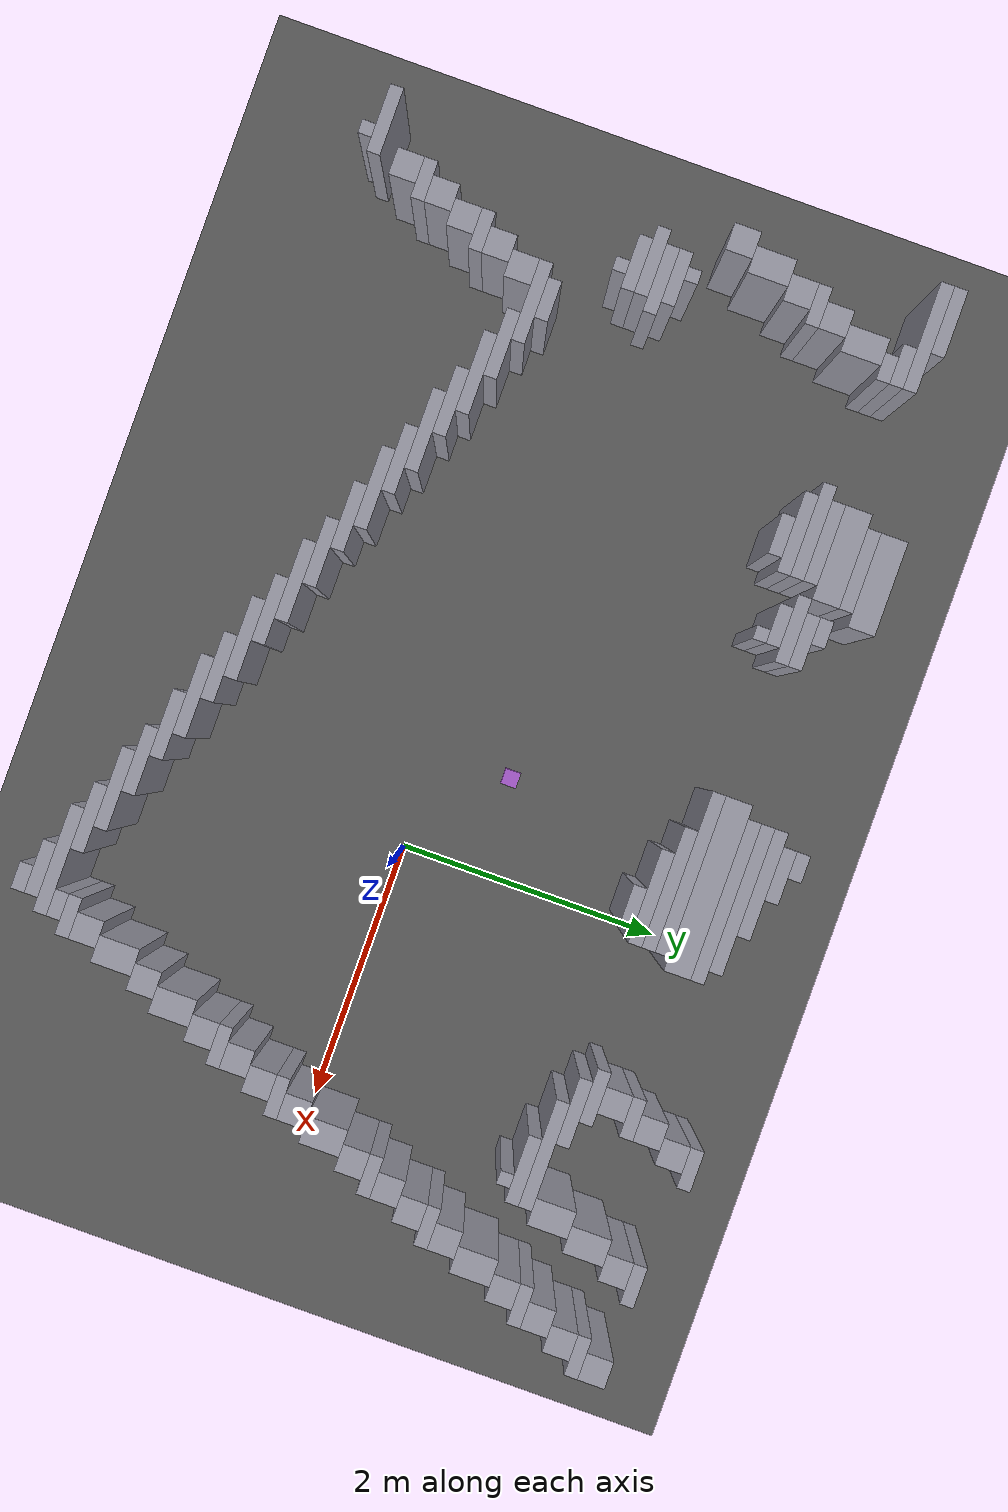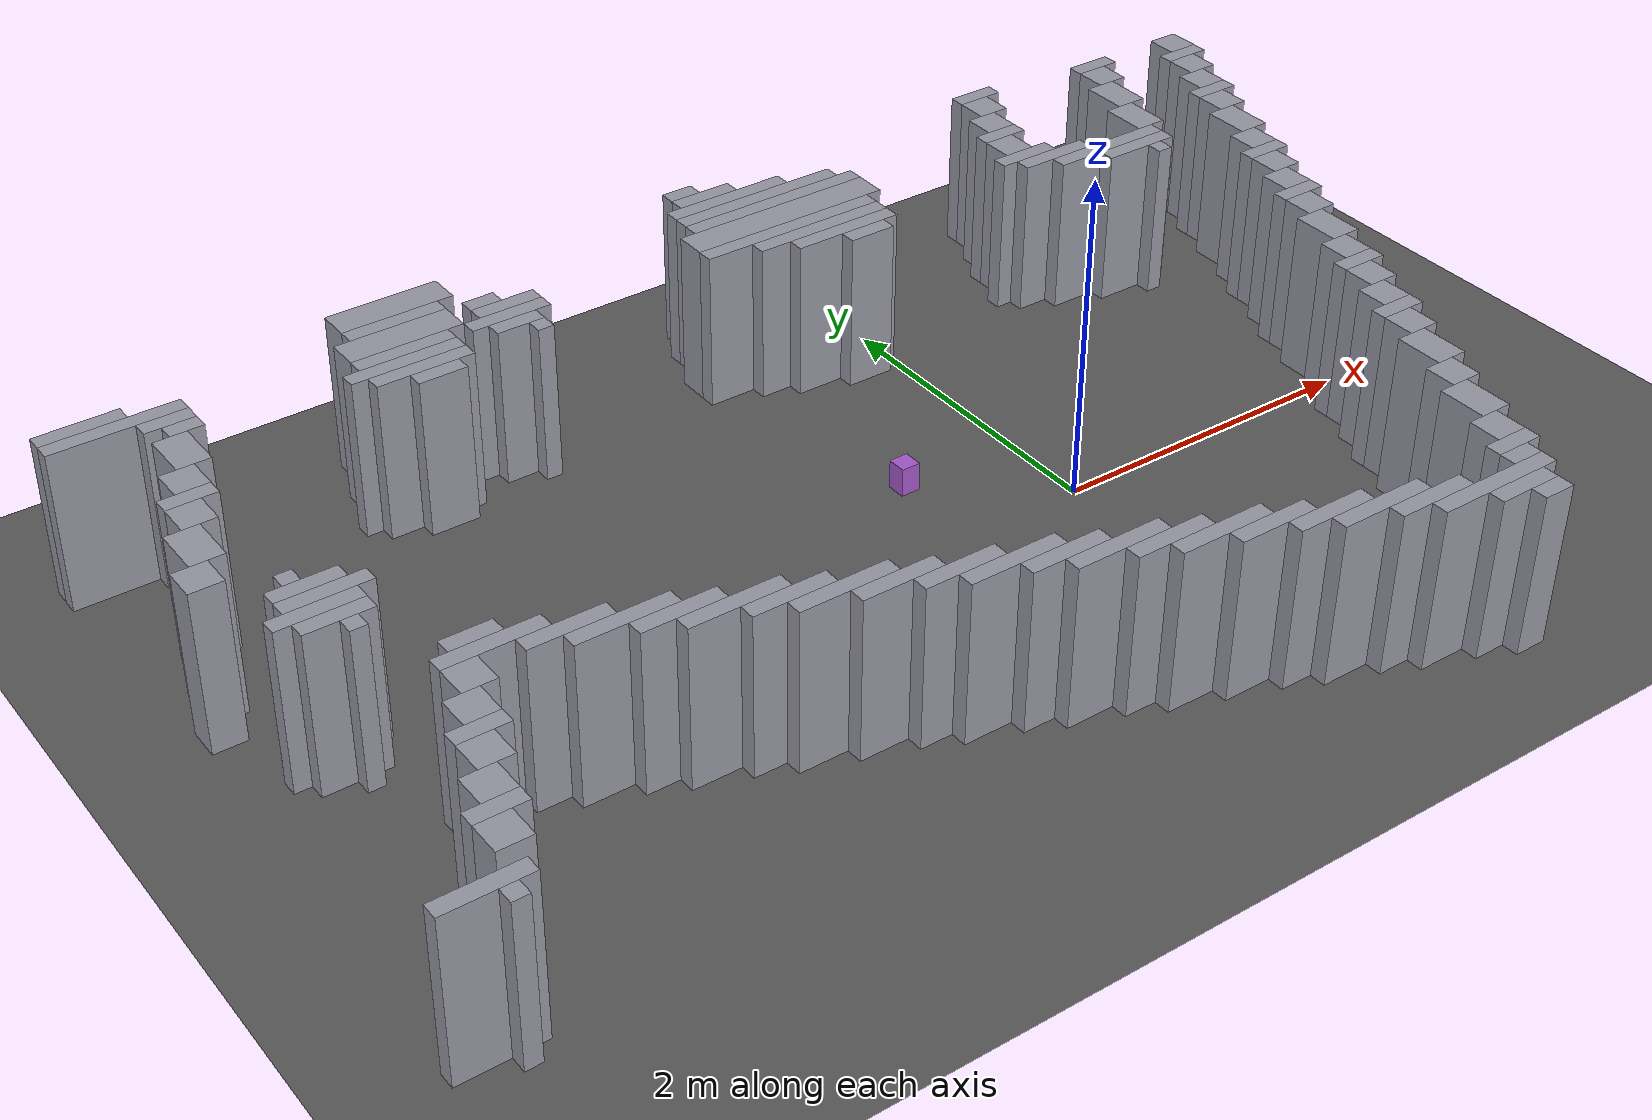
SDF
<sdf version="1.8">
 <world name="dimi">
  <model name="ground">
   <static>true</static>
   <link name="ground_link">
    <collision name="c"><geometry><plane><normal>0 0 1</normal><size>60 60</size></plane></geometry></collision>
    <visual name="v">
     <geometry><plane><normal>0 0 1</normal><size>60 60</size></plane></geometry>
     <material><ambient>0.3 0.3 0.3 1</ambient><diffuse>0.35 0.35 0.35 1</diffuse></material>
    </visual>
   </link>
  </model>
  <model name="walls">
   <static>true</static>
   <link name="wall_163">
    <pose>-0.8730 2.6800 0.5000 0 0 0</pose>
    <collision name="c"><geometry><box><size>0.2000 0.1000 1.0000</size></box></geometry></collision>
    <visual name="v">
     <geometry><box><size>0.2000 0.1000 1.0000</size></box></geometry>
     <material><ambient>0.5 0.5 0.55 1</ambient><diffuse>0.6 0.6 0.65 1</diffuse></material>
    </visual>
   </link>
   <link name="wall_164">
    <pose>1.3770 2.6800 0.5000 0 0 0</pose>
    <collision name="c"><geometry><box><size>0.3000 0.1000 1.0000</size></box></geometry></collision>
    <visual name="v">
     <geometry><box><size>0.3000 0.1000 1.0000</size></box></geometry>
     <material><ambient>0.5 0.5 0.55 1</ambient><diffuse>0.6 0.6 0.65 1</diffuse></material>
    </visual>
   </link>
   <link name="wall_166">
    <pose>-2.9230 2.5300 0.5000 0 0 0</pose>
    <collision name="c"><geometry><box><size>0.7000 0.2000 1.0000</size></box></geometry></collision>
    <visual name="v">
     <geometry><box><size>0.7000 0.2000 1.0000</size></box></geometry>
     <material><ambient>0.5 0.5 0.55 1</ambient><diffuse>0.6 0.6 0.65 1</diffuse></material>
    </visual>
   </link>
   <link name="wall_167">
    <pose>-0.7730 2.5800 0.5000 0 0 0</pose>
    <collision name="c"><geometry><box><size>0.4000 0.1000 1.0000</size></box></geometry></collision>
    <visual name="v">
     <geometry><box><size>0.4000 0.1000 1.0000</size></box></geometry>
     <material><ambient>0.5 0.5 0.55 1</ambient><diffuse>0.6 0.6 0.65 1</diffuse></material>
    </visual>
   </link>
   <link name="wall_168">
    <pose>1.3270 2.5300 0.5000 0 0 0</pose>
    <collision name="c"><geometry><box><size>0.2000 0.2000 1.0000</size></box></geometry></collision>
    <visual name="v">
     <geometry><box><size>0.2000 0.2000 1.0000</size></box></geometry>
     <material><ambient>0.5 0.5 0.55 1</ambient><diffuse>0.6 0.6 0.65 1</diffuse></material>
    </visual>
   </link>
   <link name="wall_169">
    <pose>2.2770 2.5800 0.5000 0 0 0</pose>
    <collision name="c"><geometry><box><size>0.3000 0.1000 1.0000</size></box></geometry></collision>
    <visual name="v">
     <geometry><box><size>0.3000 0.1000 1.0000</size></box></geometry>
     <material><ambient>0.5 0.5 0.55 1</ambient><diffuse>0.6 0.6 0.65 1</diffuse></material>
    </visual>
   </link>
   <link name="wall_170">
    <pose>2.9270 2.5300 0.5000 0 0 0</pose>
    <collision name="c"><geometry><box><size>0.2000 0.2000 1.0000</size></box></geometry></collision>
    <visual name="v">
     <geometry><box><size>0.2000 0.2000 1.0000</size></box></geometry>
     <material><ambient>0.5 0.5 0.55 1</ambient><diffuse>0.6 0.6 0.65 1</diffuse></material>
    </visual>
   </link>
   <link name="wall_173">
    <pose>-0.6730 2.4800 0.5000 0 0 0</pose>
    <collision name="c"><geometry><box><size>0.8000 0.1000 1.0000</size></box></geometry></collision>
    <visual name="v">
     <geometry><box><size>0.8000 0.1000 1.0000</size></box></geometry>
     <material><ambient>0.5 0.5 0.55 1</ambient><diffuse>0.6 0.6 0.65 1</diffuse></material>
    </visual>
   </link>
   <link name="wall_174">
    <pose>2.2270 2.4300 0.5000 0 0 0</pose>
    <collision name="c"><geometry><box><size>0.2000 0.2000 1.0000</size></box></geometry></collision>
    <visual name="v">
     <geometry><box><size>0.2000 0.2000 1.0000</size></box></geometry>
     <material><ambient>0.5 0.5 0.55 1</ambient><diffuse>0.6 0.6 0.65 1</diffuse></material>
    </visual>
   </link>
   <link name="wall_176">
    <pose>-4.8230 2.3800 0.5000 0 0 0</pose>
    <collision name="c"><geometry><box><size>0.5000 0.1000 1.0000</size></box></geometry></collision>
    <visual name="v">
     <geometry><box><size>0.5000 0.1000 1.0000</size></box></geometry>
     <material><ambient>0.5 0.5 0.55 1</ambient><diffuse>0.6 0.6 0.65 1</diffuse></material>
    </visual>
   </link>
   <link name="wall_177">
    <pose>-2.9730 2.3800 0.5000 0 0 0</pose>
    <collision name="c"><geometry><box><size>0.6000 0.1000 1.0000</size></box></geometry></collision>
    <visual name="v">
     <geometry><box><size>0.6000 0.1000 1.0000</size></box></geometry>
     <material><ambient>0.5 0.5 0.55 1</ambient><diffuse>0.6 0.6 0.65 1</diffuse></material>
    </visual>
   </link>
   <link name="wall_178">
    <pose>-0.5230 2.3800 0.5000 0 0 0</pose>
    <collision name="c"><geometry><box><size>1.1000 0.1000 1.0000</size></box></geometry></collision>
    <visual name="v">
     <geometry><box><size>1.1000 0.1000 1.0000</size></box></geometry>
     <material><ambient>0.5 0.5 0.55 1</ambient><diffuse>0.6 0.6 0.65 1</diffuse></material>
    </visual>
   </link>
   <link name="wall_179">
    <pose>1.2270 2.3300 0.5000 0 0 0</pose>
    <collision name="c"><geometry><box><size>0.2000 0.2000 1.0000</size></box></geometry></collision>
    <visual name="v">
     <geometry><box><size>0.2000 0.2000 1.0000</size></box></geometry>
     <material><ambient>0.5 0.5 0.55 1</ambient><diffuse>0.6 0.6 0.65 1</diffuse></material>
    </visual>
   </link>
   <link name="wall_180">
    <pose>2.8770 2.3800 0.5000 0 0 0</pose>
    <collision name="c"><geometry><box><size>0.3000 0.1000 1.0000</size></box></geometry></collision>
    <visual name="v">
     <geometry><box><size>0.3000 0.1000 1.0000</size></box></geometry>
     <material><ambient>0.5 0.5 0.55 1</ambient><diffuse>0.6 0.6 0.65 1</diffuse></material>
    </visual>
   </link>
   <link name="wall_182">
    <pose>-4.6730 2.2800 0.5000 0 0 0</pose>
    <collision name="c"><geometry><box><size>0.8000 0.1000 1.0000</size></box></geometry></collision>
    <visual name="v">
     <geometry><box><size>0.8000 0.1000 1.0000</size></box></geometry>
     <material><ambient>0.5 0.5 0.55 1</ambient><diffuse>0.6 0.6 0.65 1</diffuse></material>
    </visual>
   </link>
   <link name="wall_183">
    <pose>-3.0230 2.2300 0.5000 0 0 0</pose>
    <collision name="c"><geometry><box><size>0.7000 0.2000 1.0000</size></box></geometry></collision>
    <visual name="v">
     <geometry><box><size>0.7000 0.2000 1.0000</size></box></geometry>
     <material><ambient>0.5 0.5 0.55 1</ambient><diffuse>0.6 0.6 0.65 1</diffuse></material>
    </visual>
   </link>
   <link name="wall_184">
    <pose>-2.4730 2.2800 0.5000 0 0 0</pose>
    <collision name="c"><geometry><box><size>0.2000 0.1000 1.0000</size></box></geometry></collision>
    <visual name="v">
     <geometry><box><size>0.2000 0.1000 1.0000</size></box></geometry>
     <material><ambient>0.5 0.5 0.55 1</ambient><diffuse>0.6 0.6 0.65 1</diffuse></material>
    </visual>
   </link>
   <link name="wall_185">
    <pose>-0.4730 2.2800 0.5000 0 0 0</pose>
    <collision name="c"><geometry><box><size>1.2000 0.1000 1.0000</size></box></geometry></collision>
    <visual name="v">
     <geometry><box><size>1.2000 0.1000 1.0000</size></box></geometry>
     <material><ambient>0.5 0.5 0.55 1</ambient><diffuse>0.6 0.6 0.65 1</diffuse></material>
    </visual>
   </link>
   <link name="wall_186">
    <pose>2.1270 2.1800 0.5000 0 0 0</pose>
    <collision name="c"><geometry><box><size>0.2000 0.3000 1.0000</size></box></geometry></collision>
    <visual name="v">
     <geometry><box><size>0.2000 0.3000 1.0000</size></box></geometry>
     <material><ambient>0.5 0.5 0.55 1</ambient><diffuse>0.6 0.6 0.65 1</diffuse></material>
    </visual>
   </link>
   <link name="wall_187">
    <pose>2.8270 2.2300 0.5000 0 0 0</pose>
    <collision name="c"><geometry><box><size>0.2000 0.2000 1.0000</size></box></geometry></collision>
    <visual name="v">
     <geometry><box><size>0.2000 0.2000 1.0000</size></box></geometry>
     <material><ambient>0.5 0.5 0.55 1</ambient><diffuse>0.6 0.6 0.65 1</diffuse></material>
    </visual>
   </link>
   <link name="wall_190">
    <pose>-4.4230 2.1800 0.5000 0 0 0</pose>
    <collision name="c"><geometry><box><size>0.3000 0.1000 1.0000</size></box></geometry></collision>
    <visual name="v">
     <geometry><box><size>0.3000 0.1000 1.0000</size></box></geometry>
     <material><ambient>0.5 0.5 0.55 1</ambient><diffuse>0.6 0.6 0.65 1</diffuse></material>
    </visual>
   </link>
   <link name="wall_191">
    <pose>-2.3730 2.1800 0.5000 0 0 0</pose>
    <collision name="c"><geometry><box><size>0.4000 0.1000 1.0000</size></box></geometry></collision>
    <visual name="v">
     <geometry><box><size>0.4000 0.1000 1.0000</size></box></geometry>
     <material><ambient>0.5 0.5 0.55 1</ambient><diffuse>0.6 0.6 0.65 1</diffuse></material>
    </visual>
   </link>
   <link name="wall_192">
    <pose>-0.5230 2.1300 0.5000 0 0 0</pose>
    <collision name="c"><geometry><box><size>1.3000 0.2000 1.0000</size></box></geometry></collision>
    <visual name="v">
     <geometry><box><size>1.3000 0.2000 1.0000</size></box></geometry>
     <material><ambient>0.5 0.5 0.55 1</ambient><diffuse>0.6 0.6 0.65 1</diffuse></material>
    </visual>
   </link>
   <link name="wall_193">
    <pose>1.1770 2.1800 0.5000 0 0 0</pose>
    <collision name="c"><geometry><box><size>0.3000 0.1000 1.0000</size></box></geometry></collision>
    <visual name="v">
     <geometry><box><size>0.3000 0.1000 1.0000</size></box></geometry>
     <material><ambient>0.5 0.5 0.55 1</ambient><diffuse>0.6 0.6 0.65 1</diffuse></material>
    </visual>
   </link>
   <link name="wall_196">
    <pose>-4.3730 2.0800 0.5000 0 0 0</pose>
    <collision name="c"><geometry><box><size>0.2000 0.1000 1.0000</size></box></geometry></collision>
    <visual name="v">
     <geometry><box><size>0.2000 0.1000 1.0000</size></box></geometry>
     <material><ambient>0.5 0.5 0.55 1</ambient><diffuse>0.6 0.6 0.65 1</diffuse></material>
    </visual>
   </link>
   <link name="wall_197">
    <pose>-3.0730 2.0800 0.5000 0 0 0</pose>
    <collision name="c"><geometry><box><size>0.6000 0.1000 1.0000</size></box></geometry></collision>
    <visual name="v">
     <geometry><box><size>0.6000 0.1000 1.0000</size></box></geometry>
     <material><ambient>0.5 0.5 0.55 1</ambient><diffuse>0.6 0.6 0.65 1</diffuse></material>
    </visual>
   </link>
   <link name="wall_198">
    <pose>-2.4230 2.0800 0.5000 0 0 0</pose>
    <collision name="c"><geometry><box><size>0.5000 0.1000 1.0000</size></box></geometry></collision>
    <visual name="v">
     <geometry><box><size>0.5000 0.1000 1.0000</size></box></geometry>
     <material><ambient>0.5 0.5 0.55 1</ambient><diffuse>0.6 0.6 0.65 1</diffuse></material>
    </visual>
   </link>
   <link name="wall_199">
    <pose>1.1270 2.0300 0.5000 0 0 0</pose>
    <collision name="c"><geometry><box><size>0.2000 0.2000 1.0000</size></box></geometry></collision>
    <visual name="v">
     <geometry><box><size>0.2000 0.2000 1.0000</size></box></geometry>
     <material><ambient>0.5 0.5 0.55 1</ambient><diffuse>0.6 0.6 0.65 1</diffuse></material>
    </visual>
   </link>
   <link name="wall_200">
    <pose>2.7270 2.0300 0.5000 0 0 0</pose>
    <collision name="c"><geometry><box><size>0.2000 0.2000 1.0000</size></box></geometry></collision>
    <visual name="v">
     <geometry><box><size>0.2000 0.2000 1.0000</size></box></geometry>
     <material><ambient>0.5 0.5 0.55 1</ambient><diffuse>0.6 0.6 0.65 1</diffuse></material>
    </visual>
   </link>
   <link name="wall_203">
    <pose>-4.4730 1.8800 0.5000 0 0 0</pose>
    <collision name="c"><geometry><box><size>0.2000 0.3000 1.0000</size></box></geometry></collision>
    <visual name="v">
     <geometry><box><size>0.2000 0.3000 1.0000</size></box></geometry>
     <material><ambient>0.5 0.5 0.55 1</ambient><diffuse>0.6 0.6 0.65 1</diffuse></material>
    </visual>
   </link>
   <link name="wall_204">
    <pose>-3.1230 1.9800 0.5000 0 0 0</pose>
    <collision name="c"><geometry><box><size>0.7000 0.1000 1.0000</size></box></geometry></collision>
    <visual name="v">
     <geometry><box><size>0.7000 0.1000 1.0000</size></box></geometry>
     <material><ambient>0.5 0.5 0.55 1</ambient><diffuse>0.6 0.6 0.65 1</diffuse></material>
    </visual>
   </link>
   <link name="wall_205">
    <pose>-2.4230 1.9800 0.5000 0 0 0</pose>
    <collision name="c"><geometry><box><size>0.3000 0.1000 1.0000</size></box></geometry></collision>
    <visual name="v">
     <geometry><box><size>0.3000 0.1000 1.0000</size></box></geometry>
     <material><ambient>0.5 0.5 0.55 1</ambient><diffuse>0.6 0.6 0.65 1</diffuse></material>
    </visual>
   </link>
   <link name="wall_206">
    <pose>-0.5730 1.9800 0.5000 0 0 0</pose>
    <collision name="c"><geometry><box><size>1.2000 0.1000 1.0000</size></box></geometry></collision>
    <visual name="v">
     <geometry><box><size>1.2000 0.1000 1.0000</size></box></geometry>
     <material><ambient>0.5 0.5 0.55 1</ambient><diffuse>0.6 0.6 0.65 1</diffuse></material>
    </visual>
   </link>
   <link name="wall_207">
    <pose>2.0270 1.8800 0.5000 0 0 0</pose>
    <collision name="c"><geometry><box><size>0.2000 0.3000 1.0000</size></box></geometry></collision>
    <visual name="v">
     <geometry><box><size>0.2000 0.3000 1.0000</size></box></geometry>
     <material><ambient>0.5 0.5 0.55 1</ambient><diffuse>0.6 0.6 0.65 1</diffuse></material>
    </visual>
   </link>
   <link name="wall_209">
    <pose>-3.0730 1.8800 0.5000 0 0 0</pose>
    <collision name="c"><geometry><box><size>0.6000 0.1000 1.0000</size></box></geometry></collision>
    <visual name="v">
     <geometry><box><size>0.6000 0.1000 1.0000</size></box></geometry>
     <material><ambient>0.5 0.5 0.55 1</ambient><diffuse>0.6 0.6 0.65 1</diffuse></material>
    </visual>
   </link>
   <link name="wall_210">
    <pose>-2.3230 1.8800 0.5000 0 0 0</pose>
    <collision name="c"><geometry><box><size>0.1000 0.1000 1.0000</size></box></geometry></collision>
    <visual name="v">
     <geometry><box><size>0.1000 0.1000 1.0000</size></box></geometry>
     <material><ambient>0.5 0.5 0.55 1</ambient><diffuse>0.6 0.6 0.65 1</diffuse></material>
    </visual>
   </link>
   <link name="wall_211">
    <pose>-0.4230 1.8800 0.5000 0 0 0</pose>
    <collision name="c"><geometry><box><size>0.9000 0.1000 1.0000</size></box></geometry></collision>
    <visual name="v">
     <geometry><box><size>0.9000 0.1000 1.0000</size></box></geometry>
     <material><ambient>0.5 0.5 0.55 1</ambient><diffuse>0.6 0.6 0.65 1</diffuse></material>
    </visual>
   </link>
   <link name="wall_212">
    <pose>1.1270 1.8800 0.5000 0 0 0</pose>
    <collision name="c"><geometry><box><size>0.4000 0.1000 1.0000</size></box></geometry></collision>
    <visual name="v">
     <geometry><box><size>0.4000 0.1000 1.0000</size></box></geometry>
     <material><ambient>0.5 0.5 0.55 1</ambient><diffuse>0.6 0.6 0.65 1</diffuse></material>
    </visual>
   </link>
   <link name="wall_213">
    <pose>2.6770 1.8800 0.5000 0 0 0</pose>
    <collision name="c"><geometry><box><size>0.3000 0.1000 1.0000</size></box></geometry></collision>
    <visual name="v">
     <geometry><box><size>0.3000 0.1000 1.0000</size></box></geometry>
     <material><ambient>0.5 0.5 0.55 1</ambient><diffuse>0.6 0.6 0.65 1</diffuse></material>
    </visual>
   </link>
   <link name="wall_215">
    <pose>-3.0230 1.7800 0.5000 0 0 0</pose>
    <collision name="c"><geometry><box><size>0.3000 0.1000 1.0000</size></box></geometry></collision>
    <visual name="v">
     <geometry><box><size>0.3000 0.1000 1.0000</size></box></geometry>
     <material><ambient>0.5 0.5 0.55 1</ambient><diffuse>0.6 0.6 0.65 1</diffuse></material>
    </visual>
   </link>
   <link name="wall_216">
    <pose>-0.3230 1.7800 0.5000 0 0 0</pose>
    <collision name="c"><geometry><box><size>0.7000 0.1000 1.0000</size></box></geometry></collision>
    <visual name="v">
     <geometry><box><size>0.7000 0.1000 1.0000</size></box></geometry>
     <material><ambient>0.5 0.5 0.55 1</ambient><diffuse>0.6 0.6 0.65 1</diffuse></material>
    </visual>
   </link>
   <link name="wall_217">
    <pose>1.2770 1.7800 0.5000 0 0 0</pose>
    <collision name="c"><geometry><box><size>0.5000 0.1000 1.0000</size></box></geometry></collision>
    <visual name="v">
     <geometry><box><size>0.5000 0.1000 1.0000</size></box></geometry>
     <material><ambient>0.5 0.5 0.55 1</ambient><diffuse>0.6 0.6 0.65 1</diffuse></material>
    </visual>
   </link>
   <link name="wall_218">
    <pose>2.6270 1.7300 0.5000 0 0 0</pose>
    <collision name="c"><geometry><box><size>0.2000 0.2000 1.0000</size></box></geometry></collision>
    <visual name="v">
     <geometry><box><size>0.2000 0.2000 1.0000</size></box></geometry>
     <material><ambient>0.5 0.5 0.55 1</ambient><diffuse>0.6 0.6 0.65 1</diffuse></material>
    </visual>
   </link>
   <link name="wall_220">
    <pose>-4.5730 1.6300 0.5000 0 0 0</pose>
    <collision name="c"><geometry><box><size>0.2000 0.2000 1.0000</size></box></geometry></collision>
    <visual name="v">
     <geometry><box><size>0.2000 0.2000 1.0000</size></box></geometry>
     <material><ambient>0.5 0.5 0.55 1</ambient><diffuse>0.6 0.6 0.65 1</diffuse></material>
    </visual>
   </link>
   <link name="wall_221">
    <pose>-0.2230 1.6800 0.5000 0 0 0</pose>
    <collision name="c"><geometry><box><size>0.3000 0.1000 1.0000</size></box></geometry></collision>
    <visual name="v">
     <geometry><box><size>0.3000 0.1000 1.0000</size></box></geometry>
     <material><ambient>0.5 0.5 0.55 1</ambient><diffuse>0.6 0.6 0.65 1</diffuse></material>
    </visual>
   </link>
   <link name="wall_222">
    <pose>1.6270 1.6800 0.5000 0 0 0</pose>
    <collision name="c"><geometry><box><size>0.8000 0.1000 1.0000</size></box></geometry></collision>
    <visual name="v">
     <geometry><box><size>0.8000 0.1000 1.0000</size></box></geometry>
     <material><ambient>0.5 0.5 0.55 1</ambient><diffuse>0.6 0.6 0.65 1</diffuse></material>
    </visual>
   </link>
   <link name="wall_224">
    <pose>1.7770 1.5800 0.5000 0 0 0</pose>
    <collision name="c"><geometry><box><size>0.5000 0.1000 1.0000</size></box></geometry></collision>
    <visual name="v">
     <geometry><box><size>0.5000 0.1000 1.0000</size></box></geometry>
     <material><ambient>0.5 0.5 0.55 1</ambient><diffuse>0.6 0.6 0.65 1</diffuse></material>
    </visual>
   </link>
   <link name="wall_225">
    <pose>2.5270 1.4800 0.5000 0 0 0</pose>
    <collision name="c"><geometry><box><size>0.2000 0.3000 1.0000</size></box></geometry></collision>
    <visual name="v">
     <geometry><box><size>0.2000 0.3000 1.0000</size></box></geometry>
     <material><ambient>0.5 0.5 0.55 1</ambient><diffuse>0.6 0.6 0.65 1</diffuse></material>
    </visual>
   </link>
   <link name="wall_228">
    <pose>-4.6230 1.4800 0.5000 0 0 0</pose>
    <collision name="c"><geometry><box><size>0.3000 0.1000 1.0000</size></box></geometry></collision>
    <visual name="v">
     <geometry><box><size>0.3000 0.1000 1.0000</size></box></geometry>
     <material><ambient>0.5 0.5 0.55 1</ambient><diffuse>0.6 0.6 0.65 1</diffuse></material>
    </visual>
   </link>
   <link name="wall_229">
    <pose>1.8770 1.4800 0.5000 0 0 0</pose>
    <collision name="c"><geometry><box><size>0.1000 0.1000 1.0000</size></box></geometry></collision>
    <visual name="v">
     <geometry><box><size>0.1000 0.1000 1.0000</size></box></geometry>
     <material><ambient>0.5 0.5 0.55 1</ambient><diffuse>0.6 0.6 0.65 1</diffuse></material>
    </visual>
   </link>
   <link name="wall_232">
    <pose>-4.6730 1.3300 0.5000 0 0 0</pose>
    <collision name="c"><geometry><box><size>0.2000 0.2000 1.0000</size></box></geometry></collision>
    <visual name="v">
     <geometry><box><size>0.2000 0.2000 1.0000</size></box></geometry>
     <material><ambient>0.5 0.5 0.55 1</ambient><diffuse>0.6 0.6 0.65 1</diffuse></material>
    </visual>
   </link>
   <link name="wall_234">
    <pose>2.4270 1.2300 0.5000 0 0 0</pose>
    <collision name="c"><geometry><box><size>0.2000 0.2000 1.0000</size></box></geometry></collision>
    <visual name="v">
     <geometry><box><size>0.2000 0.2000 1.0000</size></box></geometry>
     <material><ambient>0.5 0.5 0.55 1</ambient><diffuse>0.6 0.6 0.65 1</diffuse></material>
    </visual>
   </link>
   <link name="wall_238">
    <pose>-4.7730 1.0800 0.5000 0 0 0</pose>
    <collision name="c"><geometry><box><size>0.2000 0.3000 1.0000</size></box></geometry></collision>
    <visual name="v">
     <geometry><box><size>0.2000 0.3000 1.0000</size></box></geometry>
     <material><ambient>0.5 0.5 0.55 1</ambient><diffuse>0.6 0.6 0.65 1</diffuse></material>
    </visual>
   </link>
   <link name="wall_241">
    <pose>2.3770 1.0800 0.5000 0 0 0</pose>
    <collision name="c"><geometry><box><size>0.3000 0.1000 1.0000</size></box></geometry></collision>
    <visual name="v">
     <geometry><box><size>0.3000 0.1000 1.0000</size></box></geometry>
     <material><ambient>0.5 0.5 0.55 1</ambient><diffuse>0.6 0.6 0.65 1</diffuse></material>
    </visual>
   </link>
   <link name="wall_244">
    <pose>2.3270 0.9300 0.5000 0 0 0</pose>
    <collision name="c"><geometry><box><size>0.2000 0.2000 1.0000</size></box></geometry></collision>
    <visual name="v">
     <geometry><box><size>0.2000 0.2000 1.0000</size></box></geometry>
     <material><ambient>0.5 0.5 0.55 1</ambient><diffuse>0.6 0.6 0.65 1</diffuse></material>
    </visual>
   </link>
   <link name="wall_248">
    <pose>-4.8730 0.8300 0.5000 0 0 0</pose>
    <collision name="c"><geometry><box><size>0.2000 0.2000 1.0000</size></box></geometry></collision>
    <visual name="v">
     <geometry><box><size>0.2000 0.2000 1.0000</size></box></geometry>
     <material><ambient>0.5 0.5 0.55 1</ambient><diffuse>0.6 0.6 0.65 1</diffuse></material>
    </visual>
   </link>
   <link name="wall_250">
    <pose>2.2270 0.7300 0.5000 0 0 0</pose>
    <collision name="c"><geometry><box><size>0.2000 0.2000 1.0000</size></box></geometry></collision>
    <visual name="v">
     <geometry><box><size>0.2000 0.2000 1.0000</size></box></geometry>
     <material><ambient>0.5 0.5 0.55 1</ambient><diffuse>0.6 0.6 0.65 1</diffuse></material>
    </visual>
   </link>
   <link name="wall_254">
    <pose>-4.5230 0.5800 0.5000 0 0 0</pose>
    <collision name="c"><geometry><box><size>0.1000 0.1000 1.0000</size></box></geometry></collision>
    <visual name="v">
     <geometry><box><size>0.1000 0.1000 1.0000</size></box></geometry>
     <material><ambient>0.5 0.5 0.55 1</ambient><diffuse>0.6 0.6 0.65 1</diffuse></material>
    </visual>
   </link>
   <link name="wall_255">
    <pose>2.1770 0.5800 0.5000 0 0 0</pose>
    <collision name="c"><geometry><box><size>0.3000 0.1000 1.0000</size></box></geometry></collision>
    <visual name="v">
     <geometry><box><size>0.3000 0.1000 1.0000</size></box></geometry>
     <material><ambient>0.5 0.5 0.55 1</ambient><diffuse>0.6 0.6 0.65 1</diffuse></material>
    </visual>
   </link>
   <link name="wall_256">
    <pose>-4.4730 0.4800 0.5000 0 0 0</pose>
    <collision name="c"><geometry><box><size>0.4000 0.1000 1.0000</size></box></geometry></collision>
    <visual name="v">
     <geometry><box><size>0.4000 0.1000 1.0000</size></box></geometry>
     <material><ambient>0.5 0.5 0.55 1</ambient><diffuse>0.6 0.6 0.65 1</diffuse></material>
    </visual>
   </link>
   <link name="wall_257">
    <pose>2.1270 0.4300 0.5000 0 0 0</pose>
    <collision name="c"><geometry><box><size>0.2000 0.2000 1.0000</size></box></geometry></collision>
    <visual name="v">
     <geometry><box><size>0.2000 0.2000 1.0000</size></box></geometry>
     <material><ambient>0.5 0.5 0.55 1</ambient><diffuse>0.6 0.6 0.65 1</diffuse></material>
    </visual>
   </link>
   <link name="wall_259">
    <pose>-4.4230 0.3800 0.5000 0 0 0</pose>
    <collision name="c"><geometry><box><size>0.5000 0.1000 1.0000</size></box></geometry></collision>
    <visual name="v">
     <geometry><box><size>0.5000 0.1000 1.0000</size></box></geometry>
     <material><ambient>0.5 0.5 0.55 1</ambient><diffuse>0.6 0.6 0.65 1</diffuse></material>
    </visual>
   </link>
   <link name="wall_261">
    <pose>-4.5230 0.2800 0.5000 0 0 0</pose>
    <collision name="c"><geometry><box><size>0.5000 0.1000 1.0000</size></box></geometry></collision>
    <visual name="v">
     <geometry><box><size>0.5000 0.1000 1.0000</size></box></geometry>
     <material><ambient>0.5 0.5 0.55 1</ambient><diffuse>0.6 0.6 0.65 1</diffuse></material>
    </visual>
   </link>
   <link name="wall_262">
    <pose>2.0270 0.1800 0.5000 0 0 0</pose>
    <collision name="c"><geometry><box><size>0.2000 0.3000 1.0000</size></box></geometry></collision>
    <visual name="v">
     <geometry><box><size>0.2000 0.3000 1.0000</size></box></geometry>
     <material><ambient>0.5 0.5 0.55 1</ambient><diffuse>0.6 0.6 0.65 1</diffuse></material>
    </visual>
   </link>
   <link name="wall_264">
    <pose>-4.4730 0.1800 0.5000 0 0 0</pose>
    <collision name="c"><geometry><box><size>0.4000 0.1000 1.0000</size></box></geometry></collision>
    <visual name="v">
     <geometry><box><size>0.4000 0.1000 1.0000</size></box></geometry>
     <material><ambient>0.5 0.5 0.55 1</ambient><diffuse>0.6 0.6 0.65 1</diffuse></material>
    </visual>
   </link>
   <link name="wall_266">
    <pose>-4.4230 0.0800 0.5000 0 0 0</pose>
    <collision name="c"><geometry><box><size>0.1000 0.1000 1.0000</size></box></geometry></collision>
    <visual name="v">
     <geometry><box><size>0.1000 0.1000 1.0000</size></box></geometry>
     <material><ambient>0.5 0.5 0.55 1</ambient><diffuse>0.6 0.6 0.65 1</diffuse></material>
    </visual>
   </link>
   <link name="wall_268">
    <pose>1.9270 -0.0700 0.5000 0 0 0</pose>
    <collision name="c"><geometry><box><size>0.2000 0.2000 1.0000</size></box></geometry></collision>
    <visual name="v">
     <geometry><box><size>0.2000 0.2000 1.0000</size></box></geometry>
     <material><ambient>0.5 0.5 0.55 1</ambient><diffuse>0.6 0.6 0.65 1</diffuse></material>
    </visual>
   </link>
   <link name="wall_271">
    <pose>1.8770 -0.2200 0.5000 0 0 0</pose>
    <collision name="c"><geometry><box><size>0.3000 0.1000 1.0000</size></box></geometry></collision>
    <visual name="v">
     <geometry><box><size>0.3000 0.1000 1.0000</size></box></geometry>
     <material><ambient>0.5 0.5 0.55 1</ambient><diffuse>0.6 0.6 0.65 1</diffuse></material>
    </visual>
   </link>
   <link name="wall_273">
    <pose>-4.0230 -0.3200 0.5000 0 0 0</pose>
    <collision name="c"><geometry><box><size>0.3000 0.1000 1.0000</size></box></geometry></collision>
    <visual name="v">
     <geometry><box><size>0.3000 0.1000 1.0000</size></box></geometry>
     <material><ambient>0.5 0.5 0.55 1</ambient><diffuse>0.6 0.6 0.65 1</diffuse></material>
    </visual>
   </link>
   <link name="wall_274">
    <pose>1.8270 -0.3700 0.5000 0 0 0</pose>
    <collision name="c"><geometry><box><size>0.2000 0.2000 1.0000</size></box></geometry></collision>
    <visual name="v">
     <geometry><box><size>0.2000 0.2000 1.0000</size></box></geometry>
     <material><ambient>0.5 0.5 0.55 1</ambient><diffuse>0.6 0.6 0.65 1</diffuse></material>
    </visual>
   </link>
   <link name="wall_276">
    <pose>-3.9730 -0.4200 0.5000 0 0 0</pose>
    <collision name="c"><geometry><box><size>0.6000 0.1000 1.0000</size></box></geometry></collision>
    <visual name="v">
     <geometry><box><size>0.6000 0.1000 1.0000</size></box></geometry>
     <material><ambient>0.5 0.5 0.55 1</ambient><diffuse>0.6 0.6 0.65 1</diffuse></material>
    </visual>
   </link>
   <link name="wall_278">
    <pose>-4.1730 -0.5700 0.5000 0 0 0</pose>
    <collision name="c"><geometry><box><size>0.2000 0.2000 1.0000</size></box></geometry></collision>
    <visual name="v">
     <geometry><box><size>0.2000 0.2000 1.0000</size></box></geometry>
     <material><ambient>0.5 0.5 0.55 1</ambient><diffuse>0.6 0.6 0.65 1</diffuse></material>
    </visual>
   </link>
   <link name="wall_279">
    <pose>-3.6230 -0.5200 0.5000 0 0 0</pose>
    <collision name="c"><geometry><box><size>0.5000 0.1000 1.0000</size></box></geometry></collision>
    <visual name="v">
     <geometry><box><size>0.5000 0.1000 1.0000</size></box></geometry>
     <material><ambient>0.5 0.5 0.55 1</ambient><diffuse>0.6 0.6 0.65 1</diffuse></material>
    </visual>
   </link>
   <link name="wall_280">
    <pose>1.7270 -0.5700 0.5000 0 0 0</pose>
    <collision name="c"><geometry><box><size>0.2000 0.2000 1.0000</size></box></geometry></collision>
    <visual name="v">
     <geometry><box><size>0.2000 0.2000 1.0000</size></box></geometry>
     <material><ambient>0.5 0.5 0.55 1</ambient><diffuse>0.6 0.6 0.65 1</diffuse></material>
    </visual>
   </link>
   <link name="wall_282">
    <pose>-3.3730 -0.6200 0.5000 0 0 0</pose>
    <collision name="c"><geometry><box><size>0.6000 0.1000 1.0000</size></box></geometry></collision>
    <visual name="v">
     <geometry><box><size>0.6000 0.1000 1.0000</size></box></geometry>
     <material><ambient>0.5 0.5 0.55 1</ambient><diffuse>0.6 0.6 0.65 1</diffuse></material>
    </visual>
   </link>
   <link name="wall_284">
    <pose>-4.2730 -0.7700 0.5000 0 0 0</pose>
    <collision name="c"><geometry><box><size>0.2000 0.2000 1.0000</size></box></geometry></collision>
    <visual name="v">
     <geometry><box><size>0.2000 0.2000 1.0000</size></box></geometry>
     <material><ambient>0.5 0.5 0.55 1</ambient><diffuse>0.6 0.6 0.65 1</diffuse></material>
    </visual>
   </link>
   <link name="wall_285">
    <pose>-3.1230 -0.7200 0.5000 0 0 0</pose>
    <collision name="c"><geometry><box><size>0.5000 0.1000 1.0000</size></box></geometry></collision>
    <visual name="v">
     <geometry><box><size>0.5000 0.1000 1.0000</size></box></geometry>
     <material><ambient>0.5 0.5 0.55 1</ambient><diffuse>0.6 0.6 0.65 1</diffuse></material>
    </visual>
   </link>
   <link name="wall_286">
    <pose>1.6770 -0.7200 0.5000 0 0 0</pose>
    <collision name="c"><geometry><box><size>0.3000 0.1000 1.0000</size></box></geometry></collision>
    <visual name="v">
     <geometry><box><size>0.3000 0.1000 1.0000</size></box></geometry>
     <material><ambient>0.5 0.5 0.55 1</ambient><diffuse>0.6 0.6 0.65 1</diffuse></material>
    </visual>
   </link>
   <link name="wall_287">
    <pose>-2.8730 -0.8200 0.5000 0 0 0</pose>
    <collision name="c"><geometry><box><size>0.6000 0.1000 1.0000</size></box></geometry></collision>
    <visual name="v">
     <geometry><box><size>0.6000 0.1000 1.0000</size></box></geometry>
     <material><ambient>0.5 0.5 0.55 1</ambient><diffuse>0.6 0.6 0.65 1</diffuse></material>
    </visual>
   </link>
   <link name="wall_288">
    <pose>1.6270 -0.8700 0.5000 0 0 0</pose>
    <collision name="c"><geometry><box><size>0.2000 0.2000 1.0000</size></box></geometry></collision>
    <visual name="v">
     <geometry><box><size>0.2000 0.2000 1.0000</size></box></geometry>
     <material><ambient>0.5 0.5 0.55 1</ambient><diffuse>0.6 0.6 0.65 1</diffuse></material>
    </visual>
   </link>
   <link name="wall_290">
    <pose>-4.3230 -0.9200 0.5000 0 0 0</pose>
    <collision name="c"><geometry><box><size>0.3000 0.1000 1.0000</size></box></geometry></collision>
    <visual name="v">
     <geometry><box><size>0.3000 0.1000 1.0000</size></box></geometry>
     <material><ambient>0.5 0.5 0.55 1</ambient><diffuse>0.6 0.6 0.65 1</diffuse></material>
    </visual>
   </link>
   <link name="wall_291">
    <pose>-2.6230 -0.9200 0.5000 0 0 0</pose>
    <collision name="c"><geometry><box><size>0.5000 0.1000 1.0000</size></box></geometry></collision>
    <visual name="v">
     <geometry><box><size>0.5000 0.1000 1.0000</size></box></geometry>
     <material><ambient>0.5 0.5 0.55 1</ambient><diffuse>0.6 0.6 0.65 1</diffuse></material>
    </visual>
   </link>
   <link name="wall_292">
    <pose>-4.3730 -1.0700 0.5000 0 0 0</pose>
    <collision name="c"><geometry><box><size>0.2000 0.2000 1.0000</size></box></geometry></collision>
    <visual name="v">
     <geometry><box><size>0.2000 0.2000 1.0000</size></box></geometry>
     <material><ambient>0.5 0.5 0.55 1</ambient><diffuse>0.6 0.6 0.65 1</diffuse></material>
    </visual>
   </link>
   <link name="wall_293">
    <pose>-2.3730 -1.0200 0.5000 0 0 0</pose>
    <collision name="c"><geometry><box><size>0.6000 0.1000 1.0000</size></box></geometry></collision>
    <visual name="v">
     <geometry><box><size>0.6000 0.1000 1.0000</size></box></geometry>
     <material><ambient>0.5 0.5 0.55 1</ambient><diffuse>0.6 0.6 0.65 1</diffuse></material>
    </visual>
   </link>
   <link name="wall_294">
    <pose>1.5270 -1.1200 0.5000 0 0 0</pose>
    <collision name="c"><geometry><box><size>0.2000 0.3000 1.0000</size></box></geometry></collision>
    <visual name="v">
     <geometry><box><size>0.2000 0.3000 1.0000</size></box></geometry>
     <material><ambient>0.5 0.5 0.55 1</ambient><diffuse>0.6 0.6 0.65 1</diffuse></material>
    </visual>
   </link>
   <link name="wall_296">
    <pose>-2.1230 -1.1200 0.5000 0 0 0</pose>
    <collision name="c"><geometry><box><size>0.5000 0.1000 1.0000</size></box></geometry></collision>
    <visual name="v">
     <geometry><box><size>0.5000 0.1000 1.0000</size></box></geometry>
     <material><ambient>0.5 0.5 0.55 1</ambient><diffuse>0.6 0.6 0.65 1</diffuse></material>
    </visual>
   </link>
   <link name="wall_298">
    <pose>-4.4730 -1.2700 0.5000 0 0 0</pose>
    <collision name="c"><geometry><box><size>0.2000 0.2000 1.0000</size></box></geometry></collision>
    <visual name="v">
     <geometry><box><size>0.2000 0.2000 1.0000</size></box></geometry>
     <material><ambient>0.5 0.5 0.55 1</ambient><diffuse>0.6 0.6 0.65 1</diffuse></material>
    </visual>
   </link>
   <link name="wall_299">
    <pose>-1.8230 -1.2200 0.5000 0 0 0</pose>
    <collision name="c"><geometry><box><size>0.5000 0.1000 1.0000</size></box></geometry></collision>
    <visual name="v">
     <geometry><box><size>0.5000 0.1000 1.0000</size></box></geometry>
     <material><ambient>0.5 0.5 0.55 1</ambient><diffuse>0.6 0.6 0.65 1</diffuse></material>
    </visual>
   </link>
   <link name="wall_301">
    <pose>-1.5730 -1.3200 0.5000 0 0 0</pose>
    <collision name="c"><geometry><box><size>0.6000 0.1000 1.0000</size></box></geometry></collision>
    <visual name="v">
     <geometry><box><size>0.6000 0.1000 1.0000</size></box></geometry>
     <material><ambient>0.5 0.5 0.55 1</ambient><diffuse>0.6 0.6 0.65 1</diffuse></material>
    </visual>
   </link>
   <link name="wall_302">
    <pose>1.4270 -1.3700 0.5000 0 0 0</pose>
    <collision name="c"><geometry><box><size>0.2000 0.2000 1.0000</size></box></geometry></collision>
    <visual name="v">
     <geometry><box><size>0.2000 0.2000 1.0000</size></box></geometry>
     <material><ambient>0.5 0.5 0.55 1</ambient><diffuse>0.6 0.6 0.65 1</diffuse></material>
    </visual>
   </link>
   <link name="wall_304">
    <pose>-4.5230 -1.4200 0.5000 0 0 0</pose>
    <collision name="c"><geometry><box><size>0.3000 0.1000 1.0000</size></box></geometry></collision>
    <visual name="v">
     <geometry><box><size>0.3000 0.1000 1.0000</size></box></geometry>
     <material><ambient>0.5 0.5 0.55 1</ambient><diffuse>0.6 0.6 0.65 1</diffuse></material>
    </visual>
   </link>
   <link name="wall_305">
    <pose>-1.3230 -1.4200 0.5000 0 0 0</pose>
    <collision name="c"><geometry><box><size>0.5000 0.1000 1.0000</size></box></geometry></collision>
    <visual name="v">
     <geometry><box><size>0.5000 0.1000 1.0000</size></box></geometry>
     <material><ambient>0.5 0.5 0.55 1</ambient><diffuse>0.6 0.6 0.65 1</diffuse></material>
    </visual>
   </link>
   <link name="wall_307">
    <pose>-4.5730 -1.5700 0.5000 0 0 0</pose>
    <collision name="c"><geometry><box><size>0.2000 0.2000 1.0000</size></box></geometry></collision>
    <visual name="v">
     <geometry><box><size>0.2000 0.2000 1.0000</size></box></geometry>
     <material><ambient>0.5 0.5 0.55 1</ambient><diffuse>0.6 0.6 0.65 1</diffuse></material>
    </visual>
   </link>
   <link name="wall_308">
    <pose>-1.0730 -1.5200 0.5000 0 0 0</pose>
    <collision name="c"><geometry><box><size>0.6000 0.1000 1.0000</size></box></geometry></collision>
    <visual name="v">
     <geometry><box><size>0.6000 0.1000 1.0000</size></box></geometry>
     <material><ambient>0.5 0.5 0.55 1</ambient><diffuse>0.6 0.6 0.65 1</diffuse></material>
    </visual>
   </link>
   <link name="wall_309">
    <pose>1.3270 -1.6200 0.5000 0 0 0</pose>
    <collision name="c"><geometry><box><size>0.2000 0.3000 1.0000</size></box></geometry></collision>
    <visual name="v">
     <geometry><box><size>0.2000 0.3000 1.0000</size></box></geometry>
     <material><ambient>0.5 0.5 0.55 1</ambient><diffuse>0.6 0.6 0.65 1</diffuse></material>
    </visual>
   </link>
   <link name="wall_311">
    <pose>-0.8230 -1.6200 0.5000 0 0 0</pose>
    <collision name="c"><geometry><box><size>0.5000 0.1000 1.0000</size></box></geometry></collision>
    <visual name="v">
     <geometry><box><size>0.5000 0.1000 1.0000</size></box></geometry>
     <material><ambient>0.5 0.5 0.55 1</ambient><diffuse>0.6 0.6 0.65 1</diffuse></material>
    </visual>
   </link>
   <link name="wall_313">
    <pose>-0.5730 -1.7200 0.5000 0 0 0</pose>
    <collision name="c"><geometry><box><size>0.6000 0.1000 1.0000</size></box></geometry></collision>
    <visual name="v">
     <geometry><box><size>0.6000 0.1000 1.0000</size></box></geometry>
     <material><ambient>0.5 0.5 0.55 1</ambient><diffuse>0.6 0.6 0.65 1</diffuse></material>
    </visual>
   </link>
   <link name="wall_314">
    <pose>-4.8230 -1.8200 0.5000 0 0 0</pose>
    <collision name="c"><geometry><box><size>0.5000 0.1000 1.0000</size></box></geometry></collision>
    <visual name="v">
     <geometry><box><size>0.5000 0.1000 1.0000</size></box></geometry>
     <material><ambient>0.5 0.5 0.55 1</ambient><diffuse>0.6 0.6 0.65 1</diffuse></material>
    </visual>
   </link>
   <link name="wall_315">
    <pose>-0.3230 -1.8200 0.5000 0 0 0</pose>
    <collision name="c"><geometry><box><size>0.5000 0.1000 1.0000</size></box></geometry></collision>
    <visual name="v">
     <geometry><box><size>0.5000 0.1000 1.0000</size></box></geometry>
     <material><ambient>0.5 0.5 0.55 1</ambient><diffuse>0.6 0.6 0.65 1</diffuse></material>
    </visual>
   </link>
   <link name="wall_316">
    <pose>1.2270 -1.8700 0.5000 0 0 0</pose>
    <collision name="c"><geometry><box><size>0.2000 0.2000 1.0000</size></box></geometry></collision>
    <visual name="v">
     <geometry><box><size>0.2000 0.2000 1.0000</size></box></geometry>
     <material><ambient>0.5 0.5 0.55 1</ambient><diffuse>0.6 0.6 0.65 1</diffuse></material>
    </visual>
   </link>
   <link name="wall_317">
    <pose>-4.7230 -1.9200 0.5000 0 0 0</pose>
    <collision name="c"><geometry><box><size>0.1000 0.1000 1.0000</size></box></geometry></collision>
    <visual name="v">
     <geometry><box><size>0.1000 0.1000 1.0000</size></box></geometry>
     <material><ambient>0.5 0.5 0.55 1</ambient><diffuse>0.6 0.6 0.65 1</diffuse></material>
    </visual>
   </link>
   <link name="wall_318">
    <pose>-0.0230 -1.9200 0.5000 0 0 0</pose>
    <collision name="c"><geometry><box><size>0.5000 0.1000 1.0000</size></box></geometry></collision>
    <visual name="v">
     <geometry><box><size>0.5000 0.1000 1.0000</size></box></geometry>
     <material><ambient>0.5 0.5 0.55 1</ambient><diffuse>0.6 0.6 0.65 1</diffuse></material>
    </visual>
   </link>
   <link name="wall_319">
    <pose>0.2270 -2.0200 0.5000 0 0 0</pose>
    <collision name="c"><geometry><box><size>0.6000 0.1000 1.0000</size></box></geometry></collision>
    <visual name="v">
     <geometry><box><size>0.6000 0.1000 1.0000</size></box></geometry>
     <material><ambient>0.5 0.5 0.55 1</ambient><diffuse>0.6 0.6 0.65 1</diffuse></material>
    </visual>
   </link>
   <link name="wall_320">
    <pose>1.1770 -2.0200 0.5000 0 0 0</pose>
    <collision name="c"><geometry><box><size>0.3000 0.1000 1.0000</size></box></geometry></collision>
    <visual name="v">
     <geometry><box><size>0.3000 0.1000 1.0000</size></box></geometry>
     <material><ambient>0.5 0.5 0.55 1</ambient><diffuse>0.6 0.6 0.65 1</diffuse></material>
    </visual>
   </link>
   <link name="wall_321">
    <pose>0.4770 -2.1200 0.5000 0 0 0</pose>
    <collision name="c"><geometry><box><size>0.5000 0.1000 1.0000</size></box></geometry></collision>
    <visual name="v">
     <geometry><box><size>0.5000 0.1000 1.0000</size></box></geometry>
     <material><ambient>0.5 0.5 0.55 1</ambient><diffuse>0.6 0.6 0.65 1</diffuse></material>
    </visual>
   </link>
   <link name="wall_322">
    <pose>1.1270 -2.1200 0.5000 0 0 0</pose>
    <collision name="c"><geometry><box><size>0.2000 0.1000 1.0000</size></box></geometry></collision>
    <visual name="v">
     <geometry><box><size>0.2000 0.1000 1.0000</size></box></geometry>
     <material><ambient>0.5 0.5 0.55 1</ambient><diffuse>0.6 0.6 0.65 1</diffuse></material>
    </visual>
   </link>
   <link name="wall_323">
    <pose>0.8270 -2.2200 0.5000 0 0 0</pose>
    <collision name="c"><geometry><box><size>0.8000 0.1000 1.0000</size></box></geometry></collision>
    <visual name="v">
     <geometry><box><size>0.8000 0.1000 1.0000</size></box></geometry>
     <material><ambient>0.5 0.5 0.55 1</ambient><diffuse>0.6 0.6 0.65 1</diffuse></material>
    </visual>
   </link>
   <link name="wall_324">
    <pose>0.9270 -2.3200 0.5000 0 0 0</pose>
    <collision name="c"><geometry><box><size>0.4000 0.1000 1.0000</size></box></geometry></collision>
    <visual name="v">
     <geometry><box><size>0.4000 0.1000 1.0000</size></box></geometry>
     <material><ambient>0.5 0.5 0.55 1</ambient><diffuse>0.6 0.6 0.65 1</diffuse></material>
    </visual>
   </link>
   <link name="wall_325">
    <pose>1.0270 -2.4200 0.5000 0 0 0</pose>
    <collision name="c"><geometry><box><size>0.2000 0.1000 1.0000</size></box></geometry></collision>
    <visual name="v">
     <geometry><box><size>0.2000 0.1000 1.0000</size></box></geometry>
     <material><ambient>0.5 0.5 0.55 1</ambient><diffuse>0.6 0.6 0.65 1</diffuse></material>
    </visual>
   </link>
  </model>
  <model name="bottle">
   <static>true</static>
   <pose>-0.7620 0.5860 0.0900 0 0 0</pose>
   <link name="link">
    <collision name="c"><geometry><box><size>0.12 0.12 0.18</size></box></geometry></collision>
    <visual name="v">
     <geometry><box><size>0.12 0.12 0.18</size></box></geometry>
     <material><ambient>0.65 0.35 0.8 1</ambient><diffuse>0.65 0.35 0.8 1</diffuse></material>
    </visual>
   </link>
  </model>
 </world>
</sdf>
